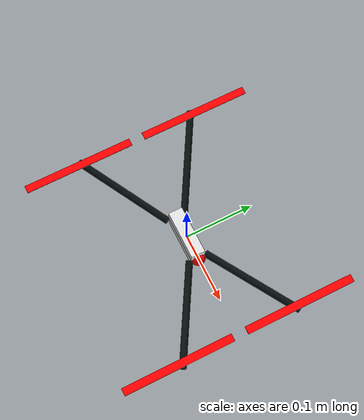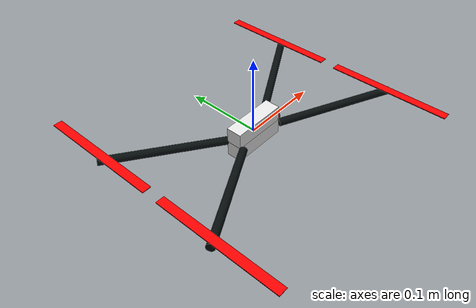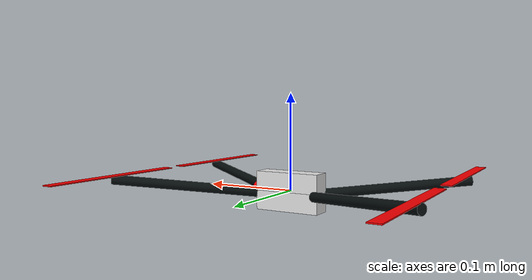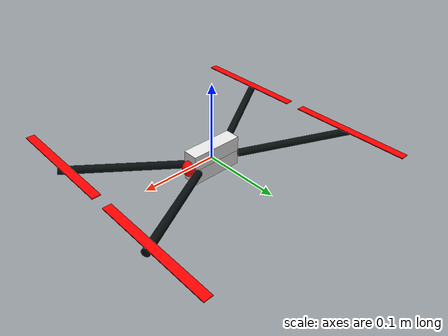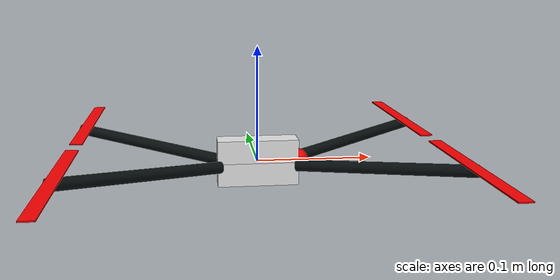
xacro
<?xml version="1.0"?>

<robot name="custom_drone" xmlns:xacro="http://www.ros.org/wiki/xacro">
<!-- Materials -->
  <material name="gray">
      <color rgba="0.5 0.5 0.5 1.0"/>
  </material>
  <material name="white">
      <color rgba="0.9 0.9 0.9 1.0"/>
  </material>
  <material name="red">
      <color rgba="1.0 0 0 1.0"/>
  </material>
  <material name="black" >
    <color rgba="0.0274 0.0509 0.0509 1.0" />
  </material>
  <material name="orange">
    <color rgba="${255/255} ${108/255} ${10/255} 1.0"/>
  </material>
  <material name="arm_material">
    <color rgba="0.0274 0.0509 0.0509 1.0"/>
  </material>

  <!-- properties -->
  <xacro:property name="propeller_radius" value="0.1"/>
  <xacro:property name="propeller_radius_smaller" value="0.07"/>
  <xacro:property name="propeller_height" value="0.01"/>
  <xacro:property name="propeller_height_offset" value="0.025"/>
  <xacro:property name="propeller_mass" value="0.01"/>
  <xacro:property name="frame_radius" value="0.1"/>
  <xacro:property name="arm_radius" value="0.005"/>
  <xacro:property name="arm_length" value="0.15"/>
  <xacro:property name="arm_mass" value="0.01"/>
  <xacro:property name="frame_height" value="0.05"/>
  <xacro:property name="frame_mass" value="0.88"/>
  <xacro:property name="arm_length_y" value="0.10"/>
  <xacro:property name="body_height" value="0.02"/>

  <link name="dummy">
   </link>
  <!-- Body link -->
  <link name="body">
      <visual>
          <origin xyz="0 0 0.01"/>
          <geometry>
              <box size="0.07 0.02 0.02"/>
          </geometry>
          <material name="white"/>
      </visual>
      <visual>
          <origin xyz="0 0 -0.01"/>
          <geometry>
              <box size="0.07 0.02 0.02"/>
          </geometry>
          <material name="white"/>
      </visual>
      <inertial>
          <mass value="${frame_mass}"/>
          <inertia ixx="0.000290833" ixy="0" ixz="0" iyy="0.00054" iyz="0" izz="0.000290833"/>
      </inertial>
      <collision name="collision">
          <geometry>
              <box size="0.18 0.18 0.05"/>
          </geometry>
      </collision>
  </link>

  <joint name="dummy_joint" type="fixed">
     <parent link="dummy"/>
     <child link="body"/>
  </joint>

  <!-- Camera link -->
  <link name="camera_link">
      <visual>
          <origin xyz="0 0 0"/>
          <geometry>
              <sphere radius="0.01"/>
          </geometry>
          <material name="red"/>
      </visual>
      <collision>
          <geometry>
              <sphere radius="0.01"/>
          </geometry>
      </collision>
      <inertial>
          <mass value="1e-5"/>
          <inertia ixx="1e-6" ixy="0" ixz="0" iyy="1e-6" iyz="0" izz="1e-6"/>
      </inertial>
  </link>

  <xacro:macro name="cylinder_inertial" params="radius height mass *origin">
    <inertial>
      <mass value="${mass}"/>
      <xacro:insert_block name="origin"/>
      <inertia
        ixx="${0.0833333 * mass * (3 * radius * radius + height * height)}"
        ixy="0.0"
        ixz="0.0"
        iyy="${0.0833333 * mass * (3 * radius * radius + height * height)}"
        iyz="0.0"
        izz="${0.5 * mass * radius * radius}"
      />
    </inertial>
  </xacro:macro>

  <!-- Propeller -->
  <xacro:macro name="propeller" params="i">
    <link name="propeller${i}">
      <visual>
        <origin xyz="0 0 0" rpy="0 0 0"/>
        <geometry>
          <box size="${0.03302/3} ${0.20*0.8} ${0.001}" />
        </geometry>
        <material name="red"/>
      </visual>
      <collision>
        <origin xyz="0 0 0" rpy="0 0 0"/>
        <geometry>
          <box size="${0.03302/3} ${0.20*0.8} ${0.001}" />
        </geometry>
      </collision>
      <xacro:cylinder_inertial radius="${propeller_radius_smaller}" height="${propeller_height}" mass="${propeller_mass}">
        <origin xyz="0 0 0" rpy="0 0 0"/>
      </xacro:cylinder_inertial>
    </link>
    <joint name="arm${i}_propeller${i}" type="revolute">
      <parent link="arm${i}"/>
      <child link="propeller${i}"/>
      <origin xyz="${cos((i-1)*pi/3+pi/6)*(frame_radius+0.08)} ${sin((i-1)*pi/3+pi/6)*(0.08+arm_length_y)} ${0.042/2-arm_radius}" rpy="0 0 0"/>
      <axis xyz="0 0 1"/>
      <limit lower="-6.2830" upper="6.283" effort="2" velocity="2.0"/>
    </joint>
  </xacro:macro>

  <xacro:macro name="arm" params="i">
    <link name="arm${i}">
      <visual>
        <origin xyz="${cos((i-1)*pi/3+pi/6)*(frame_radius+0.10/8)} ${sin((i-1)*pi/3+pi/6)*(0.05+arm_length_y/2)} ${body_height/2-arm_radius}" rpy="0 ${pi/180 * 85} ${(i-1)*pi/3+pi/6}"/>
        <geometry>
          <cylinder radius="${arm_radius}" length="${arm_length}"/>
        </geometry>
        <material name="arm_material"/>
      </visual>
      <collision>
        <origin xyz="${cos((i-1)*pi/3+pi/6)*(frame_radius+0.10/8)} ${sin((i-1)*pi/3+pi/6)*(0.05+arm_length_y/2)} ${body_height/2-arm_radius}" rpy="0 ${pi/180 * 85} ${(i-1)*pi/3+pi/6}"/>
        <geometry>
          <cylinder radius="${arm_radius}" length="${arm_length}"/>
        </geometry>
      </collision>
      <xacro:cylinder_inertial radius="${arm_radius}" height="${arm_length}" mass="${arm_mass}">
        <origin xyz="${cos((i-1)*pi/3+pi/6)*(frame_radius+0.10/8)} ${sin((i-1)*pi/3+pi/6)*(0.05+arm_length_y/2)} ${body_height/2-arm_radius}" rpy="0 $${pi/180 * 85} ${(i-1)*pi/3+pi/6}"/>
      </xacro:cylinder_inertial>
    </link>

    <joint name="frame_arm${i}" type="fixed">
      <parent link="body"/>
      <child link="arm${i}"/>
    </joint>

    <gazebo reference="arm${i}">
      <material>Gazebo/Grey</material>
    </gazebo>
  </xacro:macro>

  <!-- Fixed joint -->
  <joint name="camera_joint" type="fixed">
      <origin xyz="0.035 0 0" rpy="0 0 0"/>  <!-- TODO fix origin -->
      <parent link="body"/>
      <child link="camera_link"/>
  </joint>

  <!-- Gazebo references -->
  <gazebo reference="body">
    <material>Gazebo/Orange</material>
  </gazebo>

  <!--Drone arms -->
  <xacro:arm i="1"/>
  <xacro:arm i="3"/>
  <xacro:arm i="4"/>
  <xacro:arm i="6"/>

  <xacro:propeller i="1"/>
  <xacro:propeller i="3"/>
  <xacro:propeller i="4"/>
  <xacro:propeller i="6"/>

  <!-- Transmissions -->

  <transmission name="transmission_propeller1">
    <type>transmission_interface/SimpleTransmission</type>
    <joint name="arm1_propeller1">
      <hardwareInterface>hardware_interface/VelocityJointInterface</hardwareInterface>
    </joint>
    <actuator name="propeller1_motor">
      <hardwareInterface>hardware_interface/VelocityJointInterface</hardwareInterface>
      <mechanicalReduction>1</mechanicalReduction>
    </actuator>
  </transmission>

  <transmission name="transmission_propeller3">
    <type>transmission_interface/SimpleTransmission</type>
    <joint name="arm3_propeller3">
      <hardwareInterface>hardware_interface/VelocityJointInterface</hardwareInterface>
    </joint>
    <actuator name="propeller3_motor">
      <hardwareInterface>hardware_interface/VelocityJointInterface</hardwareInterface>
      <mechanicalReduction>1</mechanicalReduction>
    </actuator>
  </transmission>

  <transmission name="transmission_propeller4">
    <type>transmission_interface/SimpleTransmission</type>
    <joint name="arm4_propeller4">
      <hardwareInterface>hardware_interface/VelocityJointInterface</hardwareInterface>
    </joint>
    <actuator name="propeller4_motor">
      <hardwareInterface>hardware_interface/VelocityJointInterface</hardwareInterface>
      <mechanicalReduction>1</mechanicalReduction>
    </actuator>
  </transmission>

  <transmission name="transmission_propeller6">
    <type>transmission_interface/SimpleTransmission</type>
    <joint name="arm6_propeller6">
      <hardwareInterface>hardware_interface/VelocityJointInterface</hardwareInterface>
    </joint>
    <actuator name="propeller6_motor">
      <hardwareInterface>hardware_interface/VelocityJointInterface</hardwareInterface>
      <mechanicalReduction>1</mechanicalReduction>
    </actuator>
  </transmission>

  <!-- Tello plugin for Gazebo -->
  <gazebo>
      <plugin name="gazebo_ros_control" filename="libgazebo_ros_control.so">
        <robotNamespace>/control</robotNamespace>
      </plugin>
  </gazebo>
  <gazebo>
    <plugin name="gazebo_ros_joint_state_publisher"
        filename="libgazebo_ros_joint_state_publisher.so">
        <update_rate>20</update_rate>
        <joint_name>arm1_propeller1</joint_name>
        <joint_name>arm3_propeller3</joint_name>
        <joint_name>arm4_propeller4</joint_name>
        <joint_name>arm6_propeller6</joint_name>
    </plugin>
  </gazebo>
  <gazebo reference="camera_link">
    <sensor type="camera" name="camera1">
      <update_rate>30.0</update_rate>
      <camera name="head">
        <horizontal_fov>1.3962634</horizontal_fov>
        <image>
          <width>800</width>
          <height>800</height>
          <format>R8G8B8</format>
        </image>
        <clip>
          <near>0.02</near>
          <far>300</far>
        </clip>
        <noise>
          <type>gaussian</type>
          <mean>0.0</mean>
          <stddev>0.007</stddev>
        </noise>
      </camera>
      <plugin name="camera_controller" filename="libgazebo_ros_camera.so">
        <alwaysOn>true</alwaysOn>
        <updateRate>0.0</updateRate>
        <cameraName>gazebo/camera1</cameraName>
        <imageTopicName>image_raw</imageTopicName>
        <cameraInfoTopicName>camera_info</cameraInfoTopicName>
        <frameName>camera_link</frameName>
        <hackBaseline>0.07</hackBaseline>
        <distortionK1>0.0</distortionK1>
        <distortionK2>0.0</distortionK2>
        <distortionK3>0.0</distortionK3>
        <distortionT1>0.0</distortionT1>
        <distortionT2>0.0</distortionT2>
      </plugin>
    </sensor>
  </gazebo>
</robot>
